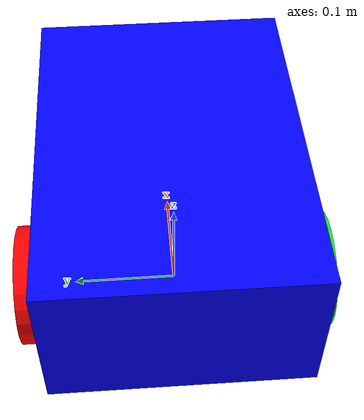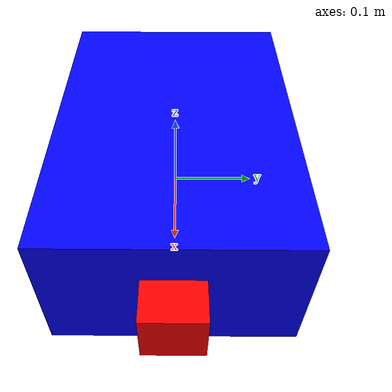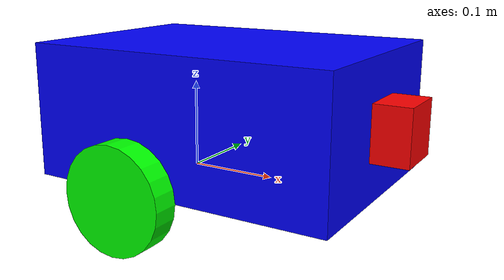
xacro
<?xml version="1.0"?>
<robot xmlns:xacro="http://www.ros.org/wiki/xacro" name="mobilebot">

  <!-- Materials -->
  <material name="red"><color rgba="1 0 0 1"/></material>
  <material name="green"><color rgba="0 1 0 1"/></material>
  <material name="blue"><color rgba="0 0 1 1"/></material>
  <material name="yellow"><color rgba="1 1 0 1"/></material>
  <material name="black"><color rgba="0 0 0 1"/></material>

  <!-- Base -->
  <link name="base_link"/>

  <!-- Chassis -->
  <joint name="chassis_joint" type="fixed">
    <parent link="base_link"/>
    <child link="chassis"/>
    <origin xyz="-0.1 0 0" rpy="0 0 0"/>
  </joint>

  <link name="chassis">
    <visual>
      <origin xyz="0.15 0 0.075" rpy="0 0 0"/>
      <geometry><box size="0.35 0.25 0.15"/></geometry>
      <material name="blue"/>
    </visual>
    <collision>
      <origin xyz="0.15 0 0.075" rpy="0 0 0"/>
      <geometry><box size="0.35 0.25 0.15"/></geometry>
    </collision>
    <inertial>
      <mass value="2.0"/>
      <origin xyz="0.15 0 0.075" rpy="0 0 0"/>
      <inertia ixx="0.01" ixy="0" ixz="0" iyy="0.01" iyz="0" izz="0.01"/>
    </inertial>
  </link>

  <!-- Left wheel -->
  <joint name="left_wheel_joint" type="continuous">
    <parent link="chassis"/>
    <child link="left_wheel"/>
    <origin xyz="0.1 0.140 0" rpy="-${pi/2} 0 0"/>
    <axis xyz="0 0 1"/>
  </joint>
  <link name="left_wheel">
    <visual><geometry><cylinder radius="0.06" length="0.03"/></geometry><material name="red"/></visual>
    <collision><geometry><cylinder radius="0.06" length="0.03"/></geometry></collision>
    <inertial>
      <mass value="0.2"/><origin xyz="0 0 0"/><inertia ixx="0.0001" ixy="0" ixz="0" iyy="0.0001" iyz="0" izz="0.0001"/>
    </inertial>
  </link>

  <!-- Right wheel -->
  <joint name="right_wheel_joint" type="continuous">
    <parent link="chassis"/><child link="right_wheel"/>
    <origin xyz="0.1 -0.140 0" rpy="${pi/2} 0 0"/>
    <axis xyz="0 0 -1"/>
  </joint>
  <link name="right_wheel">
    <visual><geometry><cylinder radius="0.06" length="0.03"/></geometry><material name="green"/></visual>
    <collision><geometry><cylinder radius="0.06" length="0.03"/></geometry></collision>
    <inertial>
      <mass value="0.2"/><origin xyz="0 0 0"/><inertia ixx="0.0001" ixy="0" ixz="0" iyy="0.0001" iyz="0" izz="0.0001"/>
    </inertial>
  </link>

  <!-- Caster -->
  <joint name="left_caster_joint" type="fixed">
    <parent link="chassis"/><child link="caster"/><origin xyz="0.24 0 0"/>
  </joint>
  <link name="caster">
    <visual><geometry><sphere radius="0.05"/></geometry><material name="yellow"/></visual>
    <collision><geometry><sphere radius="0.05"/></geometry></collision>
    <inertial>
      <mass value="0.05"/><origin xyz="0 0 0"/><inertia ixx="1e-5" ixy="0" ixz="0" iyy="1e-5" iyz="0" izz="1e-5"/>
    </inertial>
  </link>
  <gazebo reference="caster">
    <material>Gazebo/black</material><mu1 value="0.001"/><mu2 value="0.001"/>
  </gazebo>

  <!-- Front camera (box touching front face, centered) -->
  <!-- Chassis front face is at x = 0.15 + 0.35/2 = 0.325 -->
  <joint name="front_camera_joint" type="fixed">
    <parent link="chassis"/><child link="front_camera_link"/>
    <origin xyz="0.325 0 0.075" rpy="0 0 0"/>
  </joint>
  <link name="front_camera_link">
    <visual><geometry><box size="0.08 0.06 0.06"/></geometry><material name="red"/></visual>
    <collision><geometry><box size="0.08 0.06 0.06"/></geometry></collision>
    <inertial>
      <mass value="0.08"/><origin xyz="0 0 0"/><inertia ixx="5e-5" ixy="0" ixz="0" iyy="5e-5" iyz="0" izz="5e-5"/>
    </inertial>
  </link>

  <!-- Gazebo camera sensor + ROS2 plugin (shows frustum and publishes image) -->
  <gazebo reference="front_camera_link">
    <sensor name="front_camera" type="camera">
      <update_rate>30</update_rate>
      <visualize>true</visualize> <!-- frustum in Gazebo -->
      <camera>
        <horizontal_fov>1.0472</horizontal_fov> <!-- ~60 deg -->
        <image><width>640</width><height>480</height><format>R8G8B8</format></image>
        <clip><near>0.05</near><far>50</far></clip>
      </camera>
      <plugin name="gazebo_ros_camera" filename="libgazebo_ros_camera.so">
        <ros>
          <namespace>/</namespace>
          <remapping>image_raw:=/front_camera/image_raw</remapping>
          <remapping>camera_info:=/front_camera/camera_info</remapping>
        </ros>
        <frame_name>front_camera_link</frame_name>
      </plugin>
    </sensor>
  </gazebo>

</robot>
